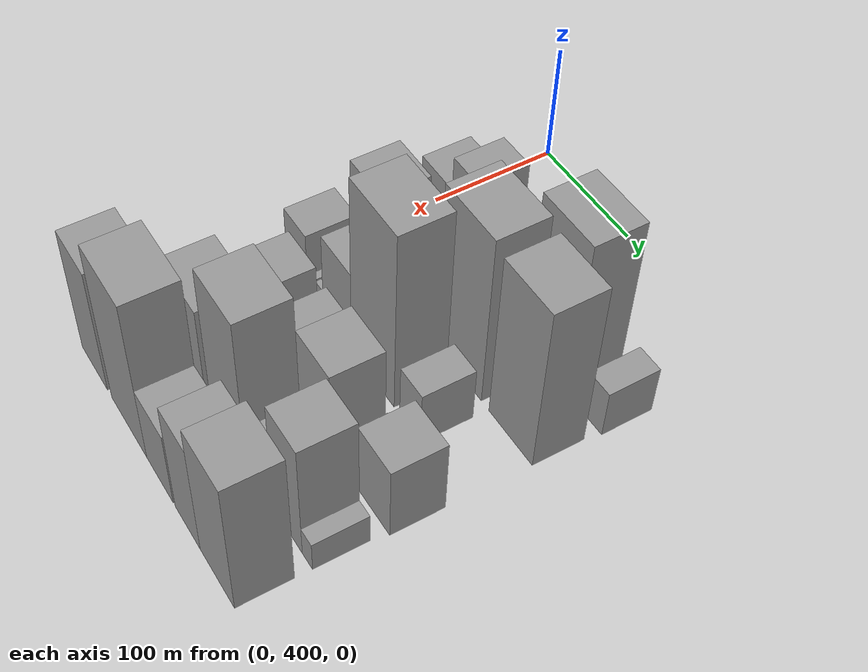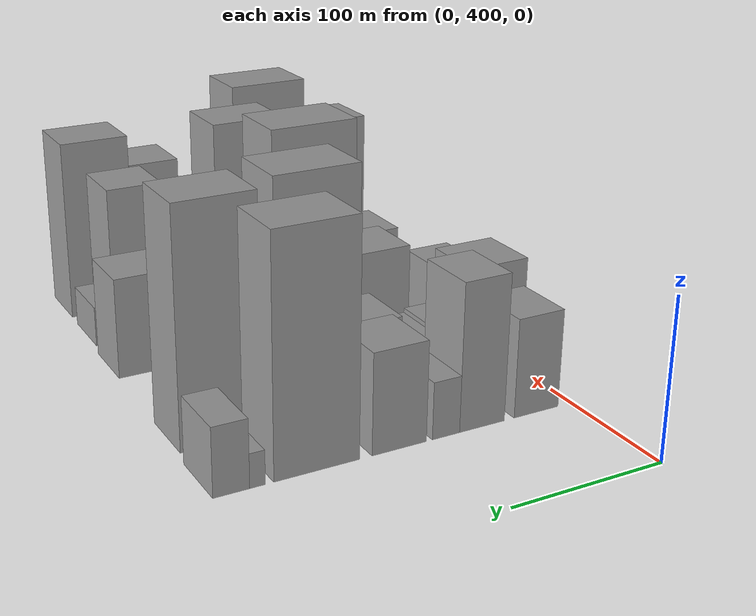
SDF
<sdf version="1.6">
 <world name="default">
  <model name="building_40">
   <static>1</static>
   <pose>100.0000 425.6944 0 0.000000 0.000000 0.000000</pose>
   <link name="link">
    <pose>0 0 31.50 0 0 0</pose>
    <collision name="collision"><geometry><box><size>40.0000 31.6009 63.0000</size></box></geometry></collision>
    <visual name="visual">
     <cast_shadows>0</cast_shadows>
     <geometry><box><size>40.0000 31.6009 63.0000</size></box></geometry>
     <material>
      <script>
       <uri>model://grey_wall/materials/scripts</uri>
       <uri>model://grey_wall/materials/textures</uri>
       <name>vrc/grey_wall</name>
      </script>
     </material>
    </visual>
   </link>
  </model>
  <model name="building_41">
   <static>1</static>
   <pose>100.0000 463.9715 0 0.000000 0.000000 0.000000</pose>
   <link name="link">
    <pose>0 0 46.50 0 0 0</pose>
    <collision name="collision"><geometry><box><size>40.0000 30.9533 93.0000</size></box></geometry></collision>
    <visual name="visual">
     <cast_shadows>0</cast_shadows>
     <geometry><box><size>40.0000 30.9533 93.0000</size></box></geometry>
     <material>
      <script>
       <uri>model://grey_wall/materials/scripts</uri>
       <uri>model://grey_wall/materials/textures</uri>
       <name>vrc/grey_wall</name>
      </script>
     </material>
    </visual>
   </link>
  </model>
  <model name="building_42">
   <static>1</static>
   <pose>100.0000 488.6046 0 0.000000 0.000000 0.000000</pose>
   <link name="link">
    <pose>0 0 18.00 0 0 0</pose>
    <collision name="collision"><geometry><box><size>40.0000 18.3129 36.0000</size></box></geometry></collision>
    <visual name="visual">
     <cast_shadows>0</cast_shadows>
     <geometry><box><size>40.0000 18.3129 36.0000</size></box></geometry>
     <material>
      <script>
       <uri>model://grey_wall/materials/scripts</uri>
       <uri>model://grey_wall/materials/textures</uri>
       <name>vrc/grey_wall</name>
      </script>
     </material>
    </visual>
   </link>
  </model>
  <model name="building_43">
   <static>1</static>
   <pose>100.0000 519.3951 0 0.000000 0.000000 0.000000</pose>
   <link name="link">
    <pose>0 0 31.50 0 0 0</pose>
    <collision name="collision"><geometry><box><size>40.0000 35.2682 63.0000</size></box></geometry></collision>
    <visual name="visual">
     <cast_shadows>0</cast_shadows>
     <geometry><box><size>40.0000 35.2682 63.0000</size></box></geometry>
     <material>
      <script>
       <uri>model://grey_wall/materials/scripts</uri>
       <uri>model://grey_wall/materials/textures</uri>
       <name>vrc/grey_wall</name>
      </script>
     </material>
    </visual>
   </link>
  </model>
  <model name="building_44">
   <static>1</static>
   <pose>100.0000 571.2320 0 0.000000 0.000000 0.000000</pose>
   <link name="link">
    <pose>0 0 72.00 0 0 0</pose>
    <collision name="collision"><geometry><box><size>40.0000 52.4056 144.0000</size></box></geometry></collision>
    <visual name="visual">
     <cast_shadows>0</cast_shadows>
     <geometry><box><size>40.0000 52.4056 144.0000</size></box></geometry>
     <material>
      <script>
       <uri>model://grey_wall/materials/scripts</uri>
       <uri>model://grey_wall/materials/textures</uri>
       <name>vrc/grey_wall</name>
      </script>
     </material>
    </visual>
   </link>
  </model>
  <model name="building_45">
   <static>1</static>
   <pose>100.0000 607.0281 0 0.000000 0.000000 0.000000</pose>
   <link name="link">
    <pose>0 0 10.50 0 0 0</pose>
    <collision name="collision"><geometry><box><size>40.0000 9.1866 21.0000</size></box></geometry></collision>
    <visual name="visual">
     <cast_shadows>0</cast_shadows>
     <geometry><box><size>40.0000 9.1866 21.0000</size></box></geometry>
     <material>
      <script>
       <uri>model://grey_wall/materials/scripts</uri>
       <uri>model://grey_wall/materials/textures</uri>
       <name>vrc/grey_wall</name>
      </script>
     </material>
    </visual>
   </link>
  </model>
  <model name="building_46">
   <static>1</static>
   <pose>100.0000 622.2681 0 0.000000 0.000000 0.000000</pose>
   <link name="link">
    <pose>0 0 21.00 0 0 0</pose>
    <collision name="collision"><geometry><box><size>40.0000 21.2934 42.0000</size></box></geometry></collision>
    <visual name="visual">
     <cast_shadows>0</cast_shadows>
     <geometry><box><size>40.0000 21.2934 42.0000</size></box></geometry>
     <material>
      <script>
       <uri>model://grey_wall/materials/scripts</uri>
       <uri>model://grey_wall/materials/textures</uri>
       <name>vrc/grey_wall</name>
      </script>
     </material>
    </visual>
   </link>
  </model>
  <model name="building_88">
   <static>1</static>
   <pose>152.0000 419.7935 0 0.000000 0.000000 0.000000</pose>
   <link name="link">
    <pose>0 0 37.50 0 0 0</pose>
    <collision name="collision"><geometry><box><size>40.0000 41.3453 75.0000</size></box></geometry></collision>
    <visual name="visual">
     <cast_shadows>0</cast_shadows>
     <geometry><box><size>40.0000 41.3453 75.0000</size></box></geometry>
     <material>
      <script>
       <uri>model://grey_wall/materials/scripts</uri>
       <uri>model://grey_wall/materials/textures</uri>
       <name>vrc/grey_wall</name>
      </script>
     </material>
    </visual>
   </link>
  </model>
  <model name="building_89">
   <static>1</static>
   <pose>152.0000 451.4452 0 0.000000 0.000000 0.000000</pose>
   <link name="link">
    <pose>0 0 19.50 0 0 0</pose>
    <collision name="collision"><geometry><box><size>40.0000 21.9581 39.0000</size></box></geometry></collision>
    <visual name="visual">
     <cast_shadows>0</cast_shadows>
     <geometry><box><size>40.0000 21.9581 39.0000</size></box></geometry>
     <material>
      <script>
       <uri>model://grey_wall/materials/scripts</uri>
       <uri>model://grey_wall/materials/textures</uri>
       <name>vrc/grey_wall</name>
      </script>
     </material>
    </visual>
   </link>
  </model>
  <model name="building_90">
   <static>1</static>
   <pose>152.0000 471.5481 0 0.000000 0.000000 0.000000</pose>
   <link name="link">
    <pose>0 0 18.00 0 0 0</pose>
    <collision name="collision"><geometry><box><size>40.0000 18.2478 36.0000</size></box></geometry></collision>
    <visual name="visual">
     <cast_shadows>0</cast_shadows>
     <geometry><box><size>40.0000 18.2478 36.0000</size></box></geometry>
     <material>
      <script>
       <uri>model://grey_wall/materials/scripts</uri>
       <uri>model://grey_wall/materials/textures</uri>
       <name>vrc/grey_wall</name>
      </script>
     </material>
    </visual>
   </link>
  </model>
  <model name="building_91">
   <static>1</static>
   <pose>152.0000 501.9968 0 0.000000 0.000000 0.000000</pose>
   <link name="link">
    <pose>0 0 27.00 0 0 0</pose>
    <collision name="collision"><geometry><box><size>40.0000 28.6496 54.0000</size></box></geometry></collision>
    <visual name="visual">
     <cast_shadows>0</cast_shadows>
     <geometry><box><size>40.0000 28.6496 54.0000</size></box></geometry>
     <material>
      <script>
       <uri>model://grey_wall/materials/scripts</uri>
       <uri>model://grey_wall/materials/textures</uri>
       <name>vrc/grey_wall</name>
      </script>
     </material>
    </visual>
   </link>
  </model>
  <model name="building_92">
   <static>1</static>
   <pose>152.0000 543.7386 0 0.000000 0.000000 0.000000</pose>
   <link name="link">
    <pose>0 0 76.50 0 0 0</pose>
    <collision name="collision"><geometry><box><size>40.0000 54.8338 153.0000</size></box></geometry></collision>
    <visual name="visual">
     <cast_shadows>0</cast_shadows>
     <geometry><box><size>40.0000 54.8338 153.0000</size></box></geometry>
     <material>
      <script>
       <uri>model://grey_wall/materials/scripts</uri>
       <uri>model://grey_wall/materials/textures</uri>
       <name>vrc/grey_wall</name>
      </script>
     </material>
    </visual>
   </link>
  </model>
  <model name="building_93">
   <static>1</static>
   <pose>152.0000 605.1376 0 0.000000 0.000000 0.000000</pose>
   <link name="link">
    <pose>0 0 73.50 0 0 0</pose>
    <collision name="collision"><geometry><box><size>40.0000 49.9643 147.0000</size></box></geometry></collision>
    <visual name="visual">
     <cast_shadows>0</cast_shadows>
     <geometry><box><size>40.0000 49.9643 147.0000</size></box></geometry>
     <material>
      <script>
       <uri>model://grey_wall/materials/scripts</uri>
       <uri>model://grey_wall/materials/textures</uri>
       <name>vrc/grey_wall</name>
      </script>
     </material>
    </visual>
   </link>
  </model>
  <model name="building_135">
   <static>1</static>
   <pose>204.0000 413.5578 0 0.000000 0.000000 0.000000</pose>
   <link name="link">
    <pose>0 0 27.00 0 0 0</pose>
    <collision name="collision"><geometry><box><size>40.0000 30.7943 54.0000</size></box></geometry></collision>
    <visual name="visual">
     <cast_shadows>0</cast_shadows>
     <geometry><box><size>40.0000 30.7943 54.0000</size></box></geometry>
     <material>
      <script>
       <uri>model://grey_wall/materials/scripts</uri>
       <uri>model://grey_wall/materials/textures</uri>
       <name>vrc/grey_wall</name>
      </script>
     </material>
    </visual>
   </link>
  </model>
  <model name="building_136">
   <static>1</static>
   <pose>204.0000 432.2280 0 0.000000 0.000000 0.000000</pose>
   <link name="link">
    <pose>0 0 7.50 0 0 0</pose>
    <collision name="collision"><geometry><box><size>40.0000 6.5461 15.0000</size></box></geometry></collision>
    <visual name="visual">
     <cast_shadows>0</cast_shadows>
     <geometry><box><size>40.0000 6.5461 15.0000</size></box></geometry>
     <material>
      <script>
       <uri>model://grey_wall/materials/scripts</uri>
       <uri>model://grey_wall/materials/textures</uri>
       <name>vrc/grey_wall</name>
      </script>
     </material>
    </visual>
   </link>
  </model>
  <model name="building_137">
   <static>1</static>
   <pose>204.0000 446.5692 0 0.000000 0.000000 0.000000</pose>
   <link name="link">
    <pose>0 0 10.50 0 0 0</pose>
    <collision name="collision"><geometry><box><size>40.0000 10.1363 21.0000</size></box></geometry></collision>
    <visual name="visual">
     <cast_shadows>0</cast_shadows>
     <geometry><box><size>40.0000 10.1363 21.0000</size></box></geometry>
     <material>
      <script>
       <uri>model://grey_wall/materials/scripts</uri>
       <uri>model://grey_wall/materials/textures</uri>
       <name>vrc/grey_wall</name>
      </script>
     </material>
    </visual>
   </link>
  </model>
  <model name="building_138">
   <static>1</static>
   <pose>204.0000 471.1603 0 0.000000 0.000000 0.000000</pose>
   <link name="link">
    <pose>0 0 37.50 0 0 0</pose>
    <collision name="collision"><geometry><box><size>40.0000 39.0460 75.0000</size></box></geometry></collision>
    <visual name="visual">
     <cast_shadows>0</cast_shadows>
     <geometry><box><size>40.0000 39.0460 75.0000</size></box></geometry>
     <material>
      <script>
       <uri>model://grey_wall/materials/scripts</uri>
       <uri>model://grey_wall/materials/textures</uri>
       <name>vrc/grey_wall</name>
      </script>
     </material>
    </visual>
   </link>
  </model>
  <model name="building_139">
   <static>1</static>
   <pose>204.0000 518.7400 0 0.000000 0.000000 0.000000</pose>
   <link name="link">
    <pose>0 0 81.00 0 0 0</pose>
    <collision name="collision"><geometry><box><size>40.0000 56.1135 162.0000</size></box></geometry></collision>
    <visual name="visual">
     <cast_shadows>0</cast_shadows>
     <geometry><box><size>40.0000 56.1135 162.0000</size></box></geometry>
     <material>
      <script>
       <uri>model://grey_wall/materials/scripts</uri>
       <uri>model://grey_wall/materials/textures</uri>
       <name>vrc/grey_wall</name>
      </script>
     </material>
    </visual>
   </link>
  </model>
  <model name="building_140">
   <static>1</static>
   <pose>204.0000 566.6855 0 0.000000 0.000000 0.000000</pose>
   <link name="link">
    <pose>0 0 24.00 0 0 0</pose>
    <collision name="collision"><geometry><box><size>40.0000 25.7774 48.0000</size></box></geometry></collision>
    <visual name="visual">
     <cast_shadows>0</cast_shadows>
     <geometry><box><size>40.0000 25.7774 48.0000</size></box></geometry>
     <material>
      <script>
       <uri>model://grey_wall/materials/scripts</uri>
       <uri>model://grey_wall/materials/textures</uri>
       <name>vrc/grey_wall</name>
      </script>
     </material>
    </visual>
   </link>
  </model>
  <model name="building_184">
   <static>1</static>
   <pose>256.0000 447.9922 0 0.000000 0.000000 0.000000</pose>
   <link name="link">
    <pose>0 0 33.00 0 0 0</pose>
    <collision name="collision"><geometry><box><size>40.0000 37.4320 66.0000</size></box></geometry></collision>
    <visual name="visual">
     <cast_shadows>0</cast_shadows>
     <geometry><box><size>40.0000 37.4320 66.0000</size></box></geometry>
     <material>
      <script>
       <uri>model://grey_wall/materials/scripts</uri>
       <uri>model://grey_wall/materials/textures</uri>
       <name>vrc/grey_wall</name>
      </script>
     </material>
    </visual>
   </link>
  </model>
  <model name="building_185">
   <static>1</static>
   <pose>256.0000 469.9682 0 0.000000 0.000000 0.000000</pose>
   <link name="link">
    <pose>0 0 7.50 0 0 0</pose>
    <collision name="collision"><geometry><box><size>40.0000 6.5200 15.0000</size></box></geometry></collision>
    <visual name="visual">
     <cast_shadows>0</cast_shadows>
     <geometry><box><size>40.0000 6.5200 15.0000</size></box></geometry>
     <material>
      <script>
       <uri>model://grey_wall/materials/scripts</uri>
       <uri>model://grey_wall/materials/textures</uri>
       <name>vrc/grey_wall</name>
      </script>
     </material>
    </visual>
   </link>
  </model>
  <model name="building_186">
   <static>1</static>
   <pose>256.0000 496.8310 0 0.000000 0.000000 0.000000</pose>
   <link name="link">
    <pose>0 0 30.00 0 0 0</pose>
    <collision name="collision"><geometry><box><size>40.0000 33.2057 60.0000</size></box></geometry></collision>
    <visual name="visual">
     <cast_shadows>0</cast_shadows>
     <geometry><box><size>40.0000 33.2057 60.0000</size></box></geometry>
     <material>
      <script>
       <uri>model://grey_wall/materials/scripts</uri>
       <uri>model://grey_wall/materials/textures</uri>
       <name>vrc/grey_wall</name>
      </script>
     </material>
    </visual>
   </link>
  </model>
  <model name="building_187">
   <static>1</static>
   <pose>256.0000 534.7373 0 0.000000 0.000000 0.000000</pose>
   <link name="link">
    <pose>0 0 37.50 0 0 0</pose>
    <collision name="collision"><geometry><box><size>40.0000 42.6069 75.0000</size></box></geometry></collision>
    <visual name="visual">
     <cast_shadows>0</cast_shadows>
     <geometry><box><size>40.0000 42.6069 75.0000</size></box></geometry>
     <material>
      <script>
       <uri>model://grey_wall/materials/scripts</uri>
       <uri>model://grey_wall/materials/textures</uri>
       <name>vrc/grey_wall</name>
      </script>
     </material>
    </visual>
   </link>
  </model>
  <model name="building_188">
   <static>1</static>
   <pose>256.0000 564.2483 0 0.000000 0.000000 0.000000</pose>
   <link name="link">
    <pose>0 0 9.00 0 0 0</pose>
    <collision name="collision"><geometry><box><size>40.0000 8.4150 18.0000</size></box></geometry></collision>
    <visual name="visual">
     <cast_shadows>0</cast_shadows>
     <geometry><box><size>40.0000 8.4150 18.0000</size></box></geometry>
     <material>
      <script>
       <uri>model://grey_wall/materials/scripts</uri>
       <uri>model://grey_wall/materials/textures</uri>
       <name>vrc/grey_wall</name>
      </script>
     </material>
    </visual>
   </link>
  </model>
  <model name="building_189">
   <static>1</static>
   <pose>256.0000 574.5244 0 0.000000 0.000000 0.000000</pose>
   <link name="link">
    <pose>0 0 13.50 0 0 0</pose>
    <collision name="collision"><geometry><box><size>40.0000 12.1372 27.0000</size></box></geometry></collision>
    <visual name="visual">
     <cast_shadows>0</cast_shadows>
     <geometry><box><size>40.0000 12.1372 27.0000</size></box></geometry>
     <material>
      <script>
       <uri>model://grey_wall/materials/scripts</uri>
       <uri>model://grey_wall/materials/textures</uri>
       <name>vrc/grey_wall</name>
      </script>
     </material>
    </visual>
   </link>
  </model>
  <model name="building_190">
   <static>1</static>
   <pose>256.0000 609.6912 0 0.000000 0.000000 0.000000</pose>
   <link name="link">
    <pose>0 0 33.00 0 0 0</pose>
    <collision name="collision"><geometry><box><size>40.0000 38.1964 66.0000</size></box></geometry></collision>
    <visual name="visual">
     <cast_shadows>0</cast_shadows>
     <geometry><box><size>40.0000 38.1964 66.0000</size></box></geometry>
     <material>
      <script>
       <uri>model://grey_wall/materials/scripts</uri>
       <uri>model://grey_wall/materials/textures</uri>
       <name>vrc/grey_wall</name>
      </script>
     </material>
    </visual>
   </link>
  </model>
  <model name="building_235">
   <static>1</static>
   <pose>308.0000 454.9186 0 0.000000 0.000000 0.000000</pose>
   <link name="link">
    <pose>0 0 45.00 0 0 0</pose>
    <collision name="collision"><geometry><box><size>40.0000 52.7343 90.0000</size></box></geometry></collision>
    <visual name="visual">
     <cast_shadows>0</cast_shadows>
     <geometry><box><size>40.0000 52.7343 90.0000</size></box></geometry>
     <material>
      <script>
       <uri>model://grey_wall/materials/scripts</uri>
       <uri>model://grey_wall/materials/textures</uri>
       <name>vrc/grey_wall</name>
      </script>
     </material>
    </visual>
   </link>
  </model>
  <model name="building_236">
   <static>1</static>
   <pose>308.0000 514.0402 0 0.000000 0.000000 0.000000</pose>
   <link name="link">
    <pose>0 0 69.00 0 0 0</pose>
    <collision name="collision"><geometry><box><size>40.0000 49.5089 138.0000</size></box></geometry></collision>
    <visual name="visual">
     <cast_shadows>0</cast_shadows>
     <geometry><box><size>40.0000 49.5089 138.0000</size></box></geometry>
     <material>
      <script>
       <uri>model://grey_wall/materials/scripts</uri>
       <uri>model://grey_wall/materials/textures</uri>
       <name>vrc/grey_wall</name>
      </script>
     </material>
    </visual>
   </link>
  </model>
  <model name="building_237">
   <static>1</static>
   <pose>308.0000 548.7487 0 0.000000 0.000000 0.000000</pose>
   <link name="link">
    <pose>0 0 19.50 0 0 0</pose>
    <collision name="collision"><geometry><box><size>40.0000 19.9081 39.0000</size></box></geometry></collision>
    <visual name="visual">
     <cast_shadows>0</cast_shadows>
     <geometry><box><size>40.0000 19.9081 39.0000</size></box></geometry>
     <material>
      <script>
       <uri>model://grey_wall/materials/scripts</uri>
       <uri>model://grey_wall/materials/textures</uri>
       <name>vrc/grey_wall</name>
      </script>
     </material>
    </visual>
   </link>
  </model>
  <model name="building_238">
   <static>1</static>
   <pose>308.0000 567.3605 0 0.000000 0.000000 0.000000</pose>
   <link name="link">
    <pose>0 0 15.00 0 0 0</pose>
    <collision name="collision"><geometry><box><size>40.0000 17.3155 30.0000</size></box></geometry></collision>
    <visual name="visual">
     <cast_shadows>0</cast_shadows>
     <geometry><box><size>40.0000 17.3155 30.0000</size></box></geometry>
     <material>
      <script>
       <uri>model://grey_wall/materials/scripts</uri>
       <uri>model://grey_wall/materials/textures</uri>
       <name>vrc/grey_wall</name>
      </script>
     </material>
    </visual>
   </link>
  </model>
  <model name="building_239">
   <static>1</static>
   <pose>308.0000 594.5099 0 0.000000 0.000000 0.000000</pose>
   <link name="link">
    <pose>0 0 52.50 0 0 0</pose>
    <collision name="collision"><geometry><box><size>40.0000 36.9833 105.0000</size></box></geometry></collision>
    <visual name="visual">
     <cast_shadows>0</cast_shadows>
     <geometry><box><size>40.0000 36.9833 105.0000</size></box></geometry>
     <material>
      <script>
       <uri>model://grey_wall/materials/scripts</uri>
       <uri>model://grey_wall/materials/textures</uri>
       <name>vrc/grey_wall</name>
      </script>
     </material>
    </visual>
   </link>
  </model>
  <model name="building_240">
   <static>1</static>
   <pose>308.0000 619.4539 0 0.000000 0.000000 0.000000</pose>
   <link name="link">
    <pose>0 0 13.50 0 0 0</pose>
    <collision name="collision"><geometry><box><size>40.0000 12.9047 27.0000</size></box></geometry></collision>
    <visual name="visual">
     <cast_shadows>0</cast_shadows>
     <geometry><box><size>40.0000 12.9047 27.0000</size></box></geometry>
     <material>
      <script>
       <uri>model://grey_wall/materials/scripts</uri>
       <uri>model://grey_wall/materials/textures</uri>
       <name>vrc/grey_wall</name>
      </script>
     </material>
    </visual>
   </link>
  </model>
  <model name="building_281">
   <static>1</static>
   <pose>360.0000 418.5339 0 0.000000 0.000000 0.000000</pose>
   <link name="link">
    <pose>0 0 57.00 0 0 0</pose>
    <collision name="collision"><geometry><box><size>40.0000 42.3635 114.0000</size></box></geometry></collision>
    <visual name="visual">
     <cast_shadows>0</cast_shadows>
     <geometry><box><size>40.0000 42.3635 114.0000</size></box></geometry>
     <material>
      <script>
       <uri>model://grey_wall/materials/scripts</uri>
       <uri>model://grey_wall/materials/textures</uri>
       <name>vrc/grey_wall</name>
      </script>
     </material>
    </visual>
   </link>
  </model>
  <model name="building_282">
   <static>1</static>
   <pose>360.0000 474.3168 0 0.000000 0.000000 0.000000</pose>
   <link name="link">
    <pose>0 0 73.50 0 0 0</pose>
    <collision name="collision"><geometry><box><size>40.0000 55.2023 147.0000</size></box></geometry></collision>
    <visual name="visual">
     <cast_shadows>0</cast_shadows>
     <geometry><box><size>40.0000 55.2023 147.0000</size></box></geometry>
     <material>
      <script>
       <uri>model://grey_wall/materials/scripts</uri>
       <uri>model://grey_wall/materials/textures</uri>
       <name>vrc/grey_wall</name>
      </script>
     </material>
    </visual>
   </link>
  </model>
  <model name="building_283">
   <static>1</static>
   <pose>360.0000 521.5688 0 0.000000 0.000000 0.000000</pose>
   <link name="link">
    <pose>0 0 34.50 0 0 0</pose>
    <collision name="collision"><geometry><box><size>40.0000 39.3016 69.0000</size></box></geometry></collision>
    <visual name="visual">
     <cast_shadows>0</cast_shadows>
     <geometry><box><size>40.0000 39.3016 69.0000</size></box></geometry>
     <material>
      <script>
       <uri>model://grey_wall/materials/scripts</uri>
       <uri>model://grey_wall/materials/textures</uri>
       <name>vrc/grey_wall</name>
      </script>
     </material>
    </visual>
   </link>
  </model>
  <model name="building_284">
   <static>1</static>
   <pose>360.0000 561.8753 0 0.000000 0.000000 0.000000</pose>
   <link name="link">
    <pose>0 0 51.00 0 0 0</pose>
    <collision name="collision"><geometry><box><size>40.0000 35.3115 102.0000</size></box></geometry></collision>
    <visual name="visual">
     <cast_shadows>0</cast_shadows>
     <geometry><box><size>40.0000 35.3115 102.0000</size></box></geometry>
     <material>
      <script>
       <uri>model://grey_wall/materials/scripts</uri>
       <uri>model://grey_wall/materials/textures</uri>
       <name>vrc/grey_wall</name>
      </script>
     </material>
    </visual>
   </link>
  </model>
  <model name="building_285">
   <static>1</static>
   <pose>360.0000 602.5351 0 0.000000 0.000000 0.000000</pose>
   <link name="link">
    <pose>0 0 61.50 0 0 0</pose>
    <collision name="collision"><geometry><box><size>40.0000 46.0082 123.0000</size></box></geometry></collision>
    <visual name="visual">
     <cast_shadows>0</cast_shadows>
     <geometry><box><size>40.0000 46.0082 123.0000</size></box></geometry>
     <material>
      <script>
       <uri>model://grey_wall/materials/scripts</uri>
       <uri>model://grey_wall/materials/textures</uri>
       <name>vrc/grey_wall</name>
      </script>
     </material>
    </visual>
   </link>
  </model>
 </world>
</sdf>
